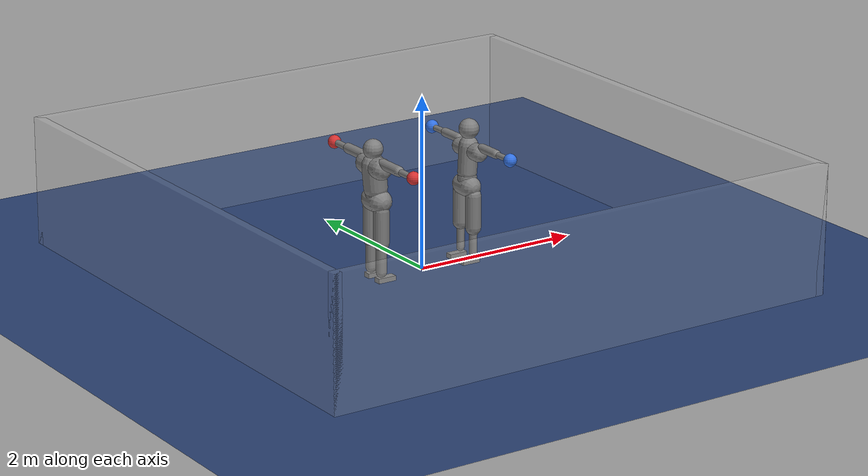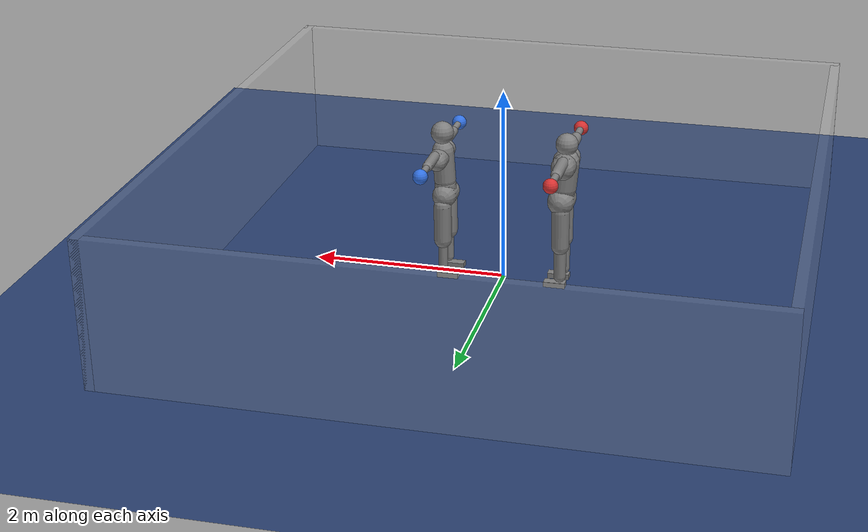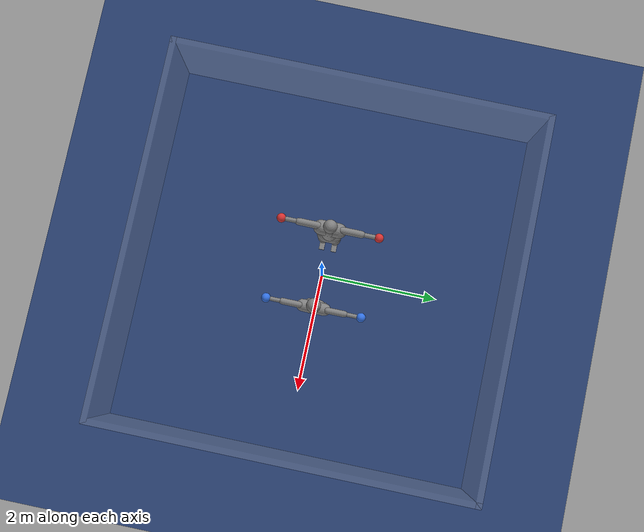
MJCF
<mujoco model="grandpa_vs_lilmatt_spar">
  <compiler angle="degree" inertiafromgeom="true" autolimits="true"/>
  <option timestep="0.005" iterations="10" ls_iterations="10" integrator="implicitfast">
    <flag eulerdamp="disable"/>
  </option>
  <default>
    <geom contype="1" conaffinity="1" condim="3" friction="1.0 0.005 0.0001" density="1000" margin="0"/>
    <joint limited="true"/>
    <position ctrllimited="true"/>
  </default>
  <asset>
    <texture name="grid" type="2d" builtin="checker" rgb1=".18 .28 .48" rgb2=".14 .22 .40" width="300" height="300"/>
    <material name="grid" texture="grid" texrepeat="6 6" reflectance="0"/>
  </asset>
  <worldbody>
    <light pos="0 0 5" dir="0 0 -1" directional="true"/>
    <geom name="floor" type="plane" size="0 0 0.05" material="grid" friction="1.0 0.005 0.0001"/>
    <geom name="rope_n" type="box" pos="0.0000 3.1000 0.7500" size="3.1500 0.0500 0.7500" rgba="0.8 0.8 0.8 0.15"/>
    <geom name="rope_s" type="box" pos="0.0000 -3.1000 0.7500" size="3.1500 0.0500 0.7500" rgba="0.8 0.8 0.8 0.15"/>
    <geom name="rope_e" type="box" pos="3.1000 0.0000 0.7500" size="0.0500 3.1500 0.7500" rgba="0.8 0.8 0.8 0.15"/>
    <geom name="rope_w" type="box" pos="-3.1000 0.0000 0.7500" size="0.0500 3.1500 0.7500" rgba="0.8 0.8 0.8 0.15"/>
    <body name="a_pelvis" pos="-0.6000 0.0000 0.9146" quat="1.00000 0 0 0.00000">
      <freejoint name="a_root"/>
      <geom name="a_pelvis_geom" type="capsule" fromto="0.0000 -0.0700 0.0000 0.0000 0.0700 0.0000" size="0.1350" mass="6.7965" />
      <geom name="a_pelvis_up" type="capsule" fromto="0.0000 0.0000 0.0000 -0.0099 0.0000 0.0920" size="0.1215" mass="4.3789" />
      <body name="a_torso" pos="-0.0099 0.0000 0.1120">
        <joint name="a_abdomen_z" type="hinge" axis="0 0 1" range="-45 45" damping="0.5" armature="0.08" stiffness="0"/>
        <joint name="a_abdomen_y" type="hinge" axis="0 1 0" range="-60 30" damping="0.5" armature="0.08" stiffness="0"/>
        <joint name="a_abdomen_x" type="hinge" axis="1 0 0" range="-35 35" damping="0.5" armature="0.08" stiffness="0"/>
        <geom name="a_torso_geom" type="capsule" fromto="0.0000 0.0000 0.0200 -0.0268 0.0000 0.2932" size="0.1350" mass="27.9385" />
        <geom name="a_chest_geom" type="capsule" fromto="-0.0230 -0.1505 0.2866 -0.0230 0.1505 0.2866" size="0.1215" mass="0.5"/>
        <geom name="a_head_geom" type="sphere" pos="-0.0325 0.0000 0.4807" size="0.1127" mass="6.3747" />
        <body name="a_upper_arm_l" pos="-0.0287 0.1881 0.3582">
          <joint name="a_shoulder_x_l" type="hinge" axis="1 0 0" range="-170 30" damping="0.5" armature="0.03" stiffness="0"/>
          <joint name="a_shoulder_z_l" type="hinge" axis="0 0 1" range="-110 110" damping="0.5" armature="0.03" stiffness="0"/>
          <geom name="a_upper_arm_l_geom" type="capsule" fromto="0.0000 0.0000 0.0000 0.0000 0.3197 0.0000" size="0.0580" mass="2.2036" />
          <body name="a_forearm_l" pos="0.0000 0.3197 0.0000">
            <joint name="a_elbow_l" type="hinge" axis="0 0 1" range="-150 0" damping="0.5" armature="0.02" stiffness="0"/>
            <geom name="a_forearm_l_geom" type="capsule" fromto="0.0000 0.0000 0.0000 0.0000 0.2162 0.0000" size="0.0373" mass="1.2592" />
            <geom name="a_glove_l" type="sphere" pos="0.0000 0.2837 0.0000" size="0.0750" mass="0.7552" rgba="0.85 0.2 0.2 1"/>
          </body>
        </body>
        <body name="a_upper_arm_r" pos="-0.0287 -0.1881 0.3582">
          <joint name="a_shoulder_x_r" type="hinge" axis="1 0 0" range="-30 170" damping="0.5" armature="0.03" stiffness="0"/>
          <joint name="a_shoulder_z_r" type="hinge" axis="0 0 1" range="-110 110" damping="0.5" armature="0.03" stiffness="0"/>
          <geom name="a_upper_arm_r_geom" type="capsule" fromto="0.0000 0.0000 0.0000 0.0000 -0.3197 0.0000" size="0.0580" mass="2.2036" />
          <body name="a_forearm_r" pos="0.0000 -0.3197 0.0000">
            <joint name="a_elbow_r" type="hinge" axis="0 0 1" range="0 150" damping="0.5" armature="0.02" stiffness="0"/>
            <geom name="a_forearm_r_geom" type="capsule" fromto="0.0000 0.0000 0.0000 0.0000 -0.2162 0.0000" size="0.0373" mass="1.2592" />
            <geom name="a_glove_r" type="sphere" pos="0.0000 -0.2837 0.0000" size="0.0750" mass="0.7552" rgba="0.85 0.2 0.2 1"/>
          </body>
        </body>
      </body>
      <body name="a_thigh_l" pos="-0.0082 0.1049 -0.0932">
        <joint name="a_hip_x_l" type="hinge" axis="1 0 0" range="-40 40" damping="0.5" armature="0.1" stiffness="0"/>
        <joint name="a_hip_z_l" type="hinge" axis="0 0 1" range="-35 35" damping="0.5" armature="0.1" stiffness="0"/>
        <joint name="a_hip_y_l" type="hinge" axis="0 1 0" range="-120 30" damping="0.5" armature="0.1" stiffness="0"/>
        <geom name="a_thigh_l_geom" type="capsule" fromto="0.0000 0.0000 0.0000 0.0000 0.0000 -0.3769" size="0.0900" mass="7.8700" />
        <body name="a_shin_l" pos="0.0000 0.0000 -0.3769">
          <joint name="a_knee_l" type="hinge" axis="0 1 0" range="0 150" damping="0.5" armature="0.1" stiffness="0"/>
          <geom name="a_shin_l_geom" type="capsule" fromto="0.0000 0.0000 0.0000 0.0000 0.0000 -0.3360" size="0.0620" mass="3.6596" />
          <body name="a_foot_l" pos="0.0000 0.0000 -0.3360">
            <joint name="a_ankle_y_l" type="hinge" axis="0 1 0" range="-20 50" damping="0.5" armature="0.03" stiffness="0"/>
            <joint name="a_ankle_x_l" type="hinge" axis="1 0 0" range="-25 25" damping="0.5" armature="0.03" stiffness="0"/>
            <geom name="a_foot_l_geom" type="box" pos="0.0506 0.0000 -0.0887" size="0.1100 0.0450 0.0280" mass="1.1412" friction="1.0 0.005 0.0001"/>
            <site name="a_foot_l_site" pos="0.0506 0.0000 -0.0887" size="0.01"/>
          </body>
        </body>
      </body>
      <body name="a_thigh_r" pos="-0.0082 -0.1049 -0.0932">
        <joint name="a_hip_x_r" type="hinge" axis="1 0 0" range="-40 40" damping="0.5" armature="0.1" stiffness="0"/>
        <joint name="a_hip_z_r" type="hinge" axis="0 0 1" range="-35 35" damping="0.5" armature="0.1" stiffness="0"/>
        <joint name="a_hip_y_r" type="hinge" axis="0 1 0" range="-120 30" damping="0.5" armature="0.1" stiffness="0"/>
        <geom name="a_thigh_r_geom" type="capsule" fromto="0.0000 0.0000 0.0000 0.0000 0.0000 -0.3769" size="0.0900" mass="7.8700" />
        <body name="a_shin_r" pos="0.0000 0.0000 -0.3769">
          <joint name="a_knee_r" type="hinge" axis="0 1 0" range="0 150" damping="0.5" armature="0.1" stiffness="0"/>
          <geom name="a_shin_r_geom" type="capsule" fromto="0.0000 0.0000 0.0000 0.0000 0.0000 -0.3360" size="0.0620" mass="3.6596" />
          <body name="a_foot_r" pos="0.0000 0.0000 -0.3360">
            <joint name="a_ankle_y_r" type="hinge" axis="0 1 0" range="-20 50" damping="0.5" armature="0.03" stiffness="0"/>
            <joint name="a_ankle_x_r" type="hinge" axis="1 0 0" range="-25 25" damping="0.5" armature="0.03" stiffness="0"/>
            <geom name="a_foot_r_geom" type="box" pos="0.0506 0.0000 -0.0887" size="0.1100 0.0450 0.0280" mass="1.1412" friction="1.0 0.005 0.0001"/>
            <site name="a_foot_r_site" pos="0.0506 0.0000 -0.0887" size="0.01"/>
          </body>
        </body>
      </body>
    </body>
    <body name="b_pelvis" pos="0.6000 0.0000 0.8672" quat="0.00000 0 0 1.00000">
      <freejoint name="b_root"/>
      <geom name="b_pelvis_geom" type="capsule" fromto="0.0000 -0.0700 0.0000 0.0000 0.0700 0.0000" size="0.1228" mass="6.8132" />
      <geom name="b_pelvis_up" type="capsule" fromto="0.0000 0.0000 0.0000 -0.0066 0.0000 0.1058" size="0.1105" mass="4.6036" />
      <body name="b_torso" pos="-0.0066 0.0000 0.1258">
        <joint name="b_abdomen_z" type="hinge" axis="0 0 1" range="-45 45" damping="0.5" armature="0.08" stiffness="0"/>
        <joint name="b_abdomen_y" type="hinge" axis="0 1 0" range="-60 30" damping="0.5" armature="0.08" stiffness="0"/>
        <joint name="b_abdomen_x" type="hinge" axis="1 0 0" range="-35 35" damping="0.5" armature="0.08" stiffness="0"/>
        <geom name="b_torso_geom" type="capsule" fromto="0.0000 0.0000 0.0200 -0.0181 0.0000 0.3354" size="0.1100" mass="28.5420" />
        <geom name="b_chest_geom" type="capsule" fromto="-0.0347 -0.1786 0.2850 -0.0347 0.1786 0.2850" size="0.0990" mass="0.5"/>
        <geom name="b_head_geom" type="sphere" pos="-0.0217 0.0000 0.5289" size="0.1155" mass="6.5124" />
        <body name="b_upper_arm_l" pos="-0.0434 0.2232 0.3563">
          <joint name="b_shoulder_x_l" type="hinge" axis="1 0 0" range="-170 30" damping="0.5" armature="0.03" stiffness="0"/>
          <joint name="b_shoulder_z_l" type="hinge" axis="0 0 1" range="-110 110" damping="0.5" armature="0.03" stiffness="0"/>
          <geom name="b_upper_arm_l_geom" type="capsule" fromto="0.0000 0.0000 0.0000 0.0000 0.2758 0.0000" size="0.0508" mass="2.2512" />
          <body name="b_forearm_l" pos="0.0000 0.2758 0.0000">
            <joint name="b_elbow_l" type="hinge" axis="0 0 1" range="-150 0" damping="0.5" armature="0.02" stiffness="0"/>
            <geom name="b_forearm_l_geom" type="capsule" fromto="0.0000 0.0000 0.0000 0.0000 0.1970 0.0000" size="0.0332" mass="1.2864" />
            <geom name="b_glove_l" type="sphere" pos="0.0000 0.2645 0.0000" size="0.0750" mass="0.7654" rgba="0.2 0.45 0.9 1"/>
          </body>
        </body>
        <body name="b_upper_arm_r" pos="-0.0434 -0.2232 0.3563">
          <joint name="b_shoulder_x_r" type="hinge" axis="1 0 0" range="-30 170" damping="0.5" armature="0.03" stiffness="0"/>
          <joint name="b_shoulder_z_r" type="hinge" axis="0 0 1" range="-110 110" damping="0.5" armature="0.03" stiffness="0"/>
          <geom name="b_upper_arm_r_geom" type="capsule" fromto="0.0000 0.0000 0.0000 0.0000 -0.2758 0.0000" size="0.0508" mass="2.2512" />
          <body name="b_forearm_r" pos="0.0000 -0.2758 0.0000">
            <joint name="b_elbow_r" type="hinge" axis="0 0 1" range="0 150" damping="0.5" armature="0.02" stiffness="0"/>
            <geom name="b_forearm_r_geom" type="capsule" fromto="0.0000 0.0000 0.0000 0.0000 -0.1970 0.0000" size="0.0332" mass="1.2864" />
            <geom name="b_glove_r" type="sphere" pos="0.0000 -0.2645 0.0000" size="0.0750" mass="0.7654" rgba="0.2 0.45 0.9 1"/>
          </body>
        </body>
      </body>
      <body name="b_thigh_l" pos="-0.0061 0.1244 -0.0919">
        <joint name="b_hip_x_l" type="hinge" axis="1 0 0" range="-40 40" damping="0.5" armature="0.1" stiffness="0"/>
        <joint name="b_hip_z_l" type="hinge" axis="0 0 1" range="-35 35" damping="0.5" armature="0.1" stiffness="0"/>
        <joint name="b_hip_y_l" type="hinge" axis="0 1 0" range="-120 30" damping="0.5" armature="0.1" stiffness="0"/>
        <geom name="b_thigh_l_geom" type="capsule" fromto="0.0000 0.0000 0.0000 0.0000 0.0000 -0.3718" size="0.0895" mass="8.0400" />
        <body name="b_shin_l" pos="0.0000 0.0000 -0.3718">
          <joint name="b_knee_l" type="hinge" axis="0 1 0" range="0 150" damping="0.5" armature="0.1" stiffness="0"/>
          <geom name="b_shin_l_geom" type="capsule" fromto="0.0000 0.0000 0.0000 0.0000 0.0000 -0.3036" size="0.0462" mass="3.7386" />
          <body name="b_foot_l" pos="0.0000 0.0000 -0.3036">
            <joint name="b_ankle_y_l" type="hinge" axis="0 1 0" range="-20 50" damping="0.5" armature="0.03" stiffness="0"/>
            <joint name="b_ankle_x_l" type="hinge" axis="1 0 0" range="-25 25" damping="0.5" armature="0.03" stiffness="0"/>
            <geom name="b_foot_l_geom" type="box" pos="0.0506 0.0000 -0.0797" size="0.1100 0.0450 0.0280" mass="1.1658" friction="1.0 0.005 0.0001"/>
            <site name="b_foot_l_site" pos="0.0506 0.0000 -0.0797" size="0.01"/>
          </body>
        </body>
      </body>
      <body name="b_thigh_r" pos="-0.0061 -0.1244 -0.0919">
        <joint name="b_hip_x_r" type="hinge" axis="1 0 0" range="-40 40" damping="0.5" armature="0.1" stiffness="0"/>
        <joint name="b_hip_z_r" type="hinge" axis="0 0 1" range="-35 35" damping="0.5" armature="0.1" stiffness="0"/>
        <joint name="b_hip_y_r" type="hinge" axis="0 1 0" range="-120 30" damping="0.5" armature="0.1" stiffness="0"/>
        <geom name="b_thigh_r_geom" type="capsule" fromto="0.0000 0.0000 0.0000 0.0000 0.0000 -0.3718" size="0.0895" mass="8.0400" />
        <body name="b_shin_r" pos="0.0000 0.0000 -0.3718">
          <joint name="b_knee_r" type="hinge" axis="0 1 0" range="0 150" damping="0.5" armature="0.1" stiffness="0"/>
          <geom name="b_shin_r_geom" type="capsule" fromto="0.0000 0.0000 0.0000 0.0000 0.0000 -0.3036" size="0.0462" mass="3.7386" />
          <body name="b_foot_r" pos="0.0000 0.0000 -0.3036">
            <joint name="b_ankle_y_r" type="hinge" axis="0 1 0" range="-20 50" damping="0.5" armature="0.03" stiffness="0"/>
            <joint name="b_ankle_x_r" type="hinge" axis="1 0 0" range="-25 25" damping="0.5" armature="0.03" stiffness="0"/>
            <geom name="b_foot_r_geom" type="box" pos="0.0506 0.0000 -0.0797" size="0.1100 0.0450 0.0280" mass="1.1658" friction="1.0 0.005 0.0001"/>
            <site name="b_foot_r_site" pos="0.0506 0.0000 -0.0797" size="0.01"/>
          </body>
        </body>
      </body>
    </body>
  </worldbody>
  <contact>
    <exclude body1="a_pelvis" body2="a_torso"/>
    <exclude body1="a_pelvis" body2="a_thigh_l"/>
    <exclude body1="a_thigh_l" body2="a_shin_l"/>
    <exclude body1="a_shin_l" body2="a_foot_l"/>
    <exclude body1="a_torso" body2="a_upper_arm_l"/>
    <exclude body1="a_upper_arm_l" body2="a_forearm_l"/>
    <exclude body1="a_pelvis" body2="a_thigh_r"/>
    <exclude body1="a_thigh_r" body2="a_shin_r"/>
    <exclude body1="a_shin_r" body2="a_foot_r"/>
    <exclude body1="a_torso" body2="a_upper_arm_r"/>
    <exclude body1="a_upper_arm_r" body2="a_forearm_r"/>
    <exclude body1="b_pelvis" body2="b_torso"/>
    <exclude body1="b_pelvis" body2="b_thigh_l"/>
    <exclude body1="b_thigh_l" body2="b_shin_l"/>
    <exclude body1="b_shin_l" body2="b_foot_l"/>
    <exclude body1="b_torso" body2="b_upper_arm_l"/>
    <exclude body1="b_upper_arm_l" body2="b_forearm_l"/>
    <exclude body1="b_pelvis" body2="b_thigh_r"/>
    <exclude body1="b_thigh_r" body2="b_shin_r"/>
    <exclude body1="b_shin_r" body2="b_foot_r"/>
    <exclude body1="b_torso" body2="b_upper_arm_r"/>
    <exclude body1="b_upper_arm_r" body2="b_forearm_r"/>
  </contact>
  <actuator>
    <position name="a_abdomen_z" joint="a_abdomen_z" kp="216.45" kv="10.101" forcerange="-81.77 81.77" ctrlrange="-0.7854 0.7854"/>
    <position name="a_abdomen_y" joint="a_abdomen_y" kp="216.45" kv="10.101" forcerange="-81.77 81.77" ctrlrange="-1.0472 0.5236"/>
    <position name="a_abdomen_x" joint="a_abdomen_x" kp="216.45" kv="10.101" forcerange="-81.77 81.77" ctrlrange="-0.6109 0.6109"/>
    <position name="a_shoulder_x_l" joint="a_shoulder_x_l" kp="76.96" kv="3.848" forcerange="-48.1 48.1" ctrlrange="-2.9671 0.5236"/>
    <position name="a_shoulder_z_l" joint="a_shoulder_z_l" kp="76.96" kv="3.848" forcerange="-48.1 48.1" ctrlrange="-1.9199 1.9199"/>
    <position name="a_elbow_l" joint="a_elbow_l" kp="52.91" kv="2.645" forcerange="-33.67 33.67" ctrlrange="-2.6180 0.0000"/>
    <position name="a_shoulder_x_r" joint="a_shoulder_x_r" kp="76.96" kv="3.848" forcerange="-48.1 48.1" ctrlrange="-0.5236 2.9671"/>
    <position name="a_shoulder_z_r" joint="a_shoulder_z_r" kp="76.96" kv="3.848" forcerange="-48.1 48.1" ctrlrange="-1.9199 1.9199"/>
    <position name="a_elbow_r" joint="a_elbow_r" kp="52.91" kv="2.645" forcerange="-33.67 33.67" ctrlrange="0.0000 2.6180"/>
    <position name="a_hip_x_l" joint="a_hip_x_l" kp="288.6" kv="14.43" forcerange="-115.44 115.44" ctrlrange="-0.6981 0.6981"/>
    <position name="a_hip_z_l" joint="a_hip_z_l" kp="288.6" kv="14.43" forcerange="-115.44 115.44" ctrlrange="-0.6109 0.6109"/>
    <position name="a_hip_y_l" joint="a_hip_y_l" kp="288.6" kv="14.43" forcerange="-115.44 115.44" ctrlrange="-2.0944 0.5236"/>
    <position name="a_knee_l" joint="a_knee_l" kp="288.6" kv="14.43" forcerange="-125.06 125.06" ctrlrange="0.0000 2.6180"/>
    <position name="a_ankle_y_l" joint="a_ankle_y_l" kp="360.75" kv="14.43" forcerange="-105.82 105.82" ctrlrange="-0.3491 0.8727"/>
    <position name="a_ankle_x_l" joint="a_ankle_x_l" kp="38.48" kv="1.924" forcerange="-28.86 28.86" ctrlrange="-0.4363 0.4363"/>
    <position name="a_hip_x_r" joint="a_hip_x_r" kp="288.6" kv="14.43" forcerange="-115.44 115.44" ctrlrange="-0.6981 0.6981"/>
    <position name="a_hip_z_r" joint="a_hip_z_r" kp="288.6" kv="14.43" forcerange="-115.44 115.44" ctrlrange="-0.6109 0.6109"/>
    <position name="a_hip_y_r" joint="a_hip_y_r" kp="288.6" kv="14.43" forcerange="-115.44 115.44" ctrlrange="-2.0944 0.5236"/>
    <position name="a_knee_r" joint="a_knee_r" kp="288.6" kv="14.43" forcerange="-125.06 125.06" ctrlrange="0.0000 2.6180"/>
    <position name="a_ankle_y_r" joint="a_ankle_y_r" kp="360.75" kv="14.43" forcerange="-105.82 105.82" ctrlrange="-0.3491 0.8727"/>
    <position name="a_ankle_x_r" joint="a_ankle_x_r" kp="38.48" kv="1.924" forcerange="-28.86 28.86" ctrlrange="-0.4363 0.4363"/>
    <position name="b_abdomen_z" joint="b_abdomen_z" kp="368.1" kv="17.178" forcerange="-139.06 139.06" ctrlrange="-0.7854 0.7854"/>
    <position name="b_abdomen_y" joint="b_abdomen_y" kp="368.1" kv="17.178" forcerange="-139.06 139.06" ctrlrange="-1.0472 0.5236"/>
    <position name="b_abdomen_x" joint="b_abdomen_x" kp="368.1" kv="17.178" forcerange="-139.06 139.06" ctrlrange="-0.6109 0.6109"/>
    <position name="b_shoulder_x_l" joint="b_shoulder_x_l" kp="130.88" kv="6.544" forcerange="-81.8 81.8" ctrlrange="-2.9671 0.5236"/>
    <position name="b_shoulder_z_l" joint="b_shoulder_z_l" kp="130.88" kv="6.544" forcerange="-81.8 81.8" ctrlrange="-1.9199 1.9199"/>
    <position name="b_elbow_l" joint="b_elbow_l" kp="89.98" kv="4.499" forcerange="-57.26 57.26" ctrlrange="-2.6180 0.0000"/>
    <position name="b_shoulder_x_r" joint="b_shoulder_x_r" kp="130.88" kv="6.544" forcerange="-81.8 81.8" ctrlrange="-0.5236 2.9671"/>
    <position name="b_shoulder_z_r" joint="b_shoulder_z_r" kp="130.88" kv="6.544" forcerange="-81.8 81.8" ctrlrange="-1.9199 1.9199"/>
    <position name="b_elbow_r" joint="b_elbow_r" kp="89.98" kv="4.499" forcerange="-57.26 57.26" ctrlrange="0.0000 2.6180"/>
    <position name="b_hip_x_l" joint="b_hip_x_l" kp="490.8" kv="24.54" forcerange="-196.32 196.32" ctrlrange="-0.6981 0.6981"/>
    <position name="b_hip_z_l" joint="b_hip_z_l" kp="490.8" kv="24.54" forcerange="-196.32 196.32" ctrlrange="-0.6109 0.6109"/>
    <position name="b_hip_y_l" joint="b_hip_y_l" kp="490.8" kv="24.54" forcerange="-196.32 196.32" ctrlrange="-2.0944 0.5236"/>
    <position name="b_knee_l" joint="b_knee_l" kp="490.8" kv="24.54" forcerange="-212.68 212.68" ctrlrange="0.0000 2.6180"/>
    <position name="b_ankle_y_l" joint="b_ankle_y_l" kp="613.5" kv="24.54" forcerange="-179.96 179.96" ctrlrange="-0.3491 0.8727"/>
    <position name="b_ankle_x_l" joint="b_ankle_x_l" kp="65.44" kv="3.272" forcerange="-49.08 49.08" ctrlrange="-0.4363 0.4363"/>
    <position name="b_hip_x_r" joint="b_hip_x_r" kp="490.8" kv="24.54" forcerange="-196.32 196.32" ctrlrange="-0.6981 0.6981"/>
    <position name="b_hip_z_r" joint="b_hip_z_r" kp="490.8" kv="24.54" forcerange="-196.32 196.32" ctrlrange="-0.6109 0.6109"/>
    <position name="b_hip_y_r" joint="b_hip_y_r" kp="490.8" kv="24.54" forcerange="-196.32 196.32" ctrlrange="-2.0944 0.5236"/>
    <position name="b_knee_r" joint="b_knee_r" kp="490.8" kv="24.54" forcerange="-212.68 212.68" ctrlrange="0.0000 2.6180"/>
    <position name="b_ankle_y_r" joint="b_ankle_y_r" kp="613.5" kv="24.54" forcerange="-179.96 179.96" ctrlrange="-0.3491 0.8727"/>
    <position name="b_ankle_x_r" joint="b_ankle_x_r" kp="65.44" kv="3.272" forcerange="-49.08 49.08" ctrlrange="-0.4363 0.4363"/>
  </actuator>
  <keyframe>
    <key name="stand" qpos="-0.6000 0.0000 0.9062 1.00000 0 0 0.00000 0.0000 0.0000 0.0000 -1.3265 -0.7330 -1.9548 1.3265 0.7330 1.9548 0.0000 0.0000 -0.1782 0.4538 -0.2756 0.0000 0.0000 0.0000 -0.1782 0.4538 -0.2756 0.0000 0.6000 0.0000 0.8593 0.00000 0 0 1.00000 0.0000 0.0000 0.0000 -1.3265 -0.7330 -1.9548 1.3265 0.7330 1.9548 0.0000 0.0000 -0.1621 0.4538 -0.2916 0.0000 0.0000 0.0000 -0.1621 0.4538 -0.2916 0.0000"/>
  </keyframe>
</mujoco>
